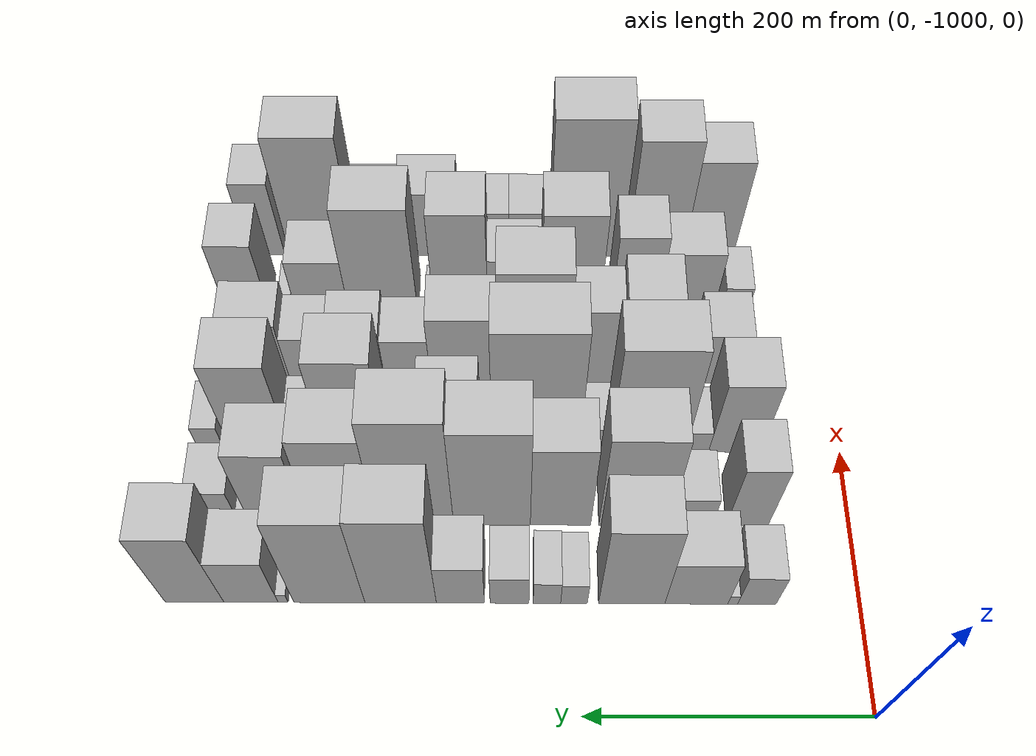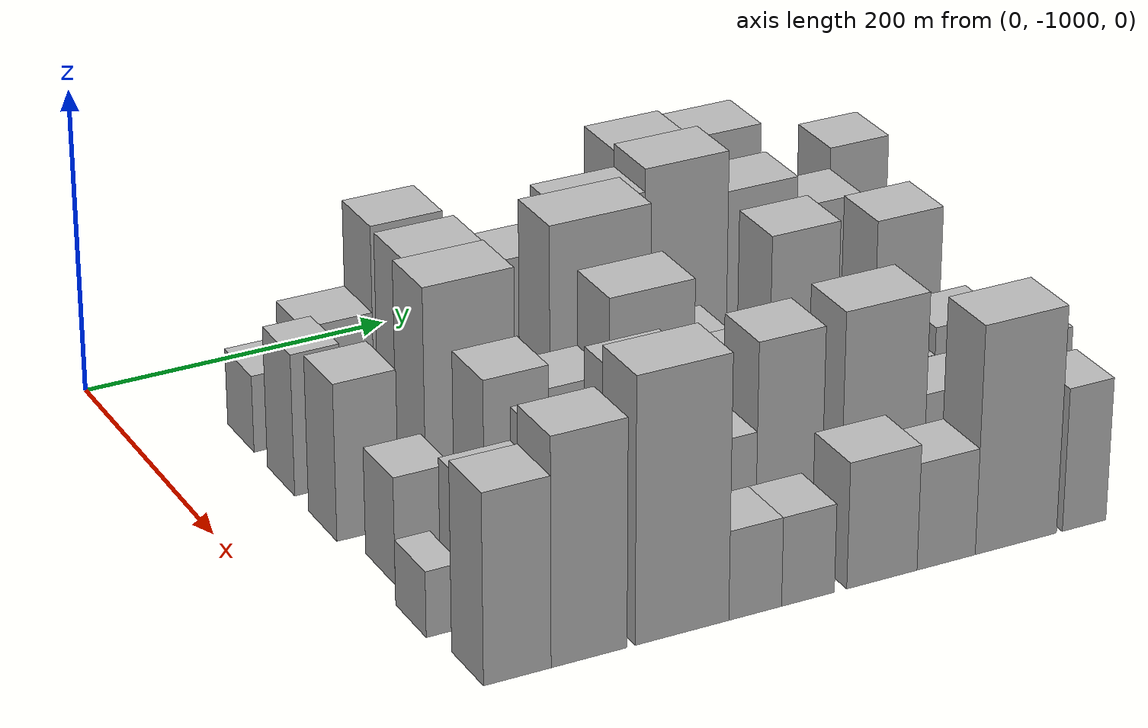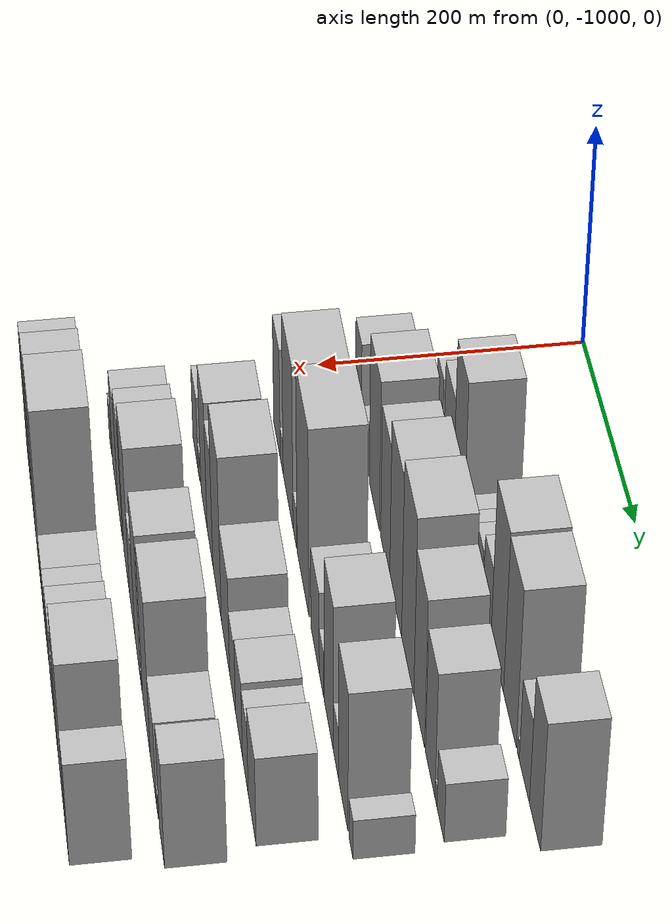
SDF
<sdf version="1.6">
 <world name="default">
  <model name="building_1">
   <static>1</static>
   <pose>100.0000 -926.3559 0 0.000000 0.000000 0.000000</pose>
   <link name="link">
    <pose>0 0 25.50 0 0 0</pose>
    <collision name="collision"><geometry><box><size>40.0000 27.2883 51.0000</size></box></geometry></collision>
    <visual name="visual">
     <cast_shadows>0</cast_shadows>
     <geometry><box><size>40.0000 27.2883 51.0000</size></box></geometry>
     <material>
      <script>
       <uri>model://HANNAS_wall/materials/scripts</uri>
       <uri>model://HANNAS_wall/materials/textures</uri>
       <name>vrc/HANNAS_wall</name>
      </script>
     </material>
    </visual>
   </link>
  </model>
  <model name="building_2">
   <static>1</static>
   <pose>100.0000 -909.2402 0 0.000000 0.000000 0.000000</pose>
   <link name="link">
    <pose>0 0 7.50 0 0 0</pose>
    <collision name="collision"><geometry><box><size>40.0000 6.9430 15.0000</size></box></geometry></collision>
    <visual name="visual">
     <cast_shadows>0</cast_shadows>
     <geometry><box><size>40.0000 6.9430 15.0000</size></box></geometry>
     <material>
      <script>
       <uri>model://HANNAS_wall/materials/scripts</uri>
       <uri>model://HANNAS_wall/materials/textures</uri>
       <name>vrc/HANNAS_wall</name>
      </script>
     </material>
    </visual>
   </link>
  </model>
  <model name="building_3">
   <static>1</static>
   <pose>100.0000 -883.3214 0 0.000000 0.000000 0.000000</pose>
   <link name="link">
    <pose>0 0 37.50 0 0 0</pose>
    <collision name="collision"><geometry><box><size>40.0000 44.8946 75.0000</size></box></geometry></collision>
    <visual name="visual">
     <cast_shadows>0</cast_shadows>
     <geometry><box><size>40.0000 44.8946 75.0000</size></box></geometry>
     <material>
      <script>
       <uri>model://HANNAS_wall/materials/scripts</uri>
       <uri>model://HANNAS_wall/materials/textures</uri>
       <name>vrc/HANNAS_wall</name>
      </script>
     </material>
    </visual>
   </link>
  </model>
  <model name="building_4">
   <static>1</static>
   <pose>100.0000 -837.3300 0 0.000000 0.000000 0.000000</pose>
   <link name="link">
    <pose>0 0 66.00 0 0 0</pose>
    <collision name="collision"><geometry><box><size>40.0000 47.0882 132.0000</size></box></geometry></collision>
    <visual name="visual">
     <cast_shadows>0</cast_shadows>
     <geometry><box><size>40.0000 47.0882 132.0000</size></box></geometry>
     <material>
      <script>
       <uri>model://HANNAS_wall/materials/scripts</uri>
       <uri>model://HANNAS_wall/materials/textures</uri>
       <name>vrc/HANNAS_wall</name>
      </script>
     </material>
    </visual>
   </link>
  </model>
  <model name="building_5">
   <static>1</static>
   <pose>100.0000 -796.3062 0 0.000000 0.000000 0.000000</pose>
   <link name="link">
    <pose>0 0 18.00 0 0 0</pose>
    <collision name="collision"><geometry><box><size>40.0000 18.9595 36.0000</size></box></geometry></collision>
    <visual name="visual">
     <cast_shadows>0</cast_shadows>
     <geometry><box><size>40.0000 18.9595 36.0000</size></box></geometry>
     <material>
      <script>
       <uri>model://HANNAS_wall/materials/scripts</uri>
       <uri>model://HANNAS_wall/materials/textures</uri>
       <name>vrc/HANNAS_wall</name>
      </script>
     </material>
    </visual>
   </link>
  </model>
  <model name="building_6">
   <static>1</static>
   <pose>100.0000 -777.0659 0 0.000000 0.000000 0.000000</pose>
   <link name="link">
    <pose>0 0 19.50 0 0 0</pose>
    <collision name="collision"><geometry><box><size>40.0000 19.5210 39.0000</size></box></geometry></collision>
    <visual name="visual">
     <cast_shadows>0</cast_shadows>
     <geometry><box><size>40.0000 19.5210 39.0000</size></box></geometry>
     <material>
      <script>
       <uri>model://HANNAS_wall/materials/scripts</uri>
       <uri>model://HANNAS_wall/materials/textures</uri>
       <name>vrc/HANNAS_wall</name>
      </script>
     </material>
    </visual>
   </link>
  </model>
  <model name="building_7">
   <static>1</static>
   <pose>100.0000 -750.5060 0 0.000000 0.000000 0.000000</pose>
   <link name="link">
    <pose>0 0 24.00 0 0 0</pose>
    <collision name="collision"><geometry><box><size>40.0000 27.5988 48.0000</size></box></geometry></collision>
    <visual name="visual">
     <cast_shadows>0</cast_shadows>
     <geometry><box><size>40.0000 27.5988 48.0000</size></box></geometry>
     <material>
      <script>
       <uri>model://HANNAS_wall/materials/scripts</uri>
       <uri>model://HANNAS_wall/materials/textures</uri>
       <name>vrc/HANNAS_wall</name>
      </script>
     </material>
    </visual>
   </link>
  </model>
  <model name="building_8">
   <static>1</static>
   <pose>100.0000 -715.6049 0 0.000000 0.000000 0.000000</pose>
   <link name="link">
    <pose>0 0 33.00 0 0 0</pose>
    <collision name="collision"><geometry><box><size>40.0000 34.2035 66.0000</size></box></geometry></collision>
    <visual name="visual">
     <cast_shadows>0</cast_shadows>
     <geometry><box><size>40.0000 34.2035 66.0000</size></box></geometry>
     <material>
      <script>
       <uri>model://HANNAS_wall/materials/scripts</uri>
       <uri>model://HANNAS_wall/materials/textures</uri>
       <name>vrc/HANNAS_wall</name>
      </script>
     </material>
    </visual>
   </link>
  </model>
  <model name="building_9">
   <static>1</static>
   <pose>100.0000 -673.0866 0 0.000000 0.000000 0.000000</pose>
   <link name="link">
    <pose>0 0 73.50 0 0 0</pose>
    <collision name="collision"><geometry><box><size>40.0000 50.8330 147.0000</size></box></geometry></collision>
    <visual name="visual">
     <cast_shadows>0</cast_shadows>
     <geometry><box><size>40.0000 50.8330 147.0000</size></box></geometry>
     <material>
      <script>
       <uri>model://HANNAS_wall/materials/scripts</uri>
       <uri>model://HANNAS_wall/materials/textures</uri>
       <name>vrc/HANNAS_wall</name>
      </script>
     </material>
    </visual>
   </link>
  </model>
  <model name="building_10">
   <static>1</static>
   <pose>100.0000 -622.3766 0 0.000000 0.000000 0.000000</pose>
   <link name="link">
    <pose>0 0 72.00 0 0 0</pose>
    <collision name="collision"><geometry><box><size>40.0000 50.5870 144.0000</size></box></geometry></collision>
    <visual name="visual">
     <cast_shadows>0</cast_shadows>
     <geometry><box><size>40.0000 50.5870 144.0000</size></box></geometry>
     <material>
      <script>
       <uri>model://HANNAS_wall/materials/scripts</uri>
       <uri>model://HANNAS_wall/materials/textures</uri>
       <name>vrc/HANNAS_wall</name>
      </script>
     </material>
    </visual>
   </link>
  </model>
  <model name="building_11">
   <static>1</static>
   <pose>100.0000 -589.4792 0 0.000000 0.000000 0.000000</pose>
   <link name="link">
    <pose>0 0 7.50 0 0 0</pose>
    <collision name="collision"><geometry><box><size>40.0000 7.2077 15.0000</size></box></geometry></collision>
    <visual name="visual">
     <cast_shadows>0</cast_shadows>
     <geometry><box><size>40.0000 7.2077 15.0000</size></box></geometry>
     <material>
      <script>
       <uri>model://HANNAS_wall/materials/scripts</uri>
       <uri>model://HANNAS_wall/materials/textures</uri>
       <name>vrc/HANNAS_wall</name>
      </script>
     </material>
    </visual>
   </link>
  </model>
  <model name="building_12">
   <static>1</static>
   <pose>100.0000 -566.5896 0 0.000000 0.000000 0.000000</pose>
   <link name="link">
    <pose>0 0 37.50 0 0 0</pose>
    <collision name="collision"><geometry><box><size>40.0000 38.5714 75.0000</size></box></geometry></collision>
    <visual name="visual">
     <cast_shadows>0</cast_shadows>
     <geometry><box><size>40.0000 38.5714 75.0000</size></box></geometry>
     <material>
      <script>
       <uri>model://HANNAS_wall/materials/scripts</uri>
       <uri>model://HANNAS_wall/materials/textures</uri>
       <name>vrc/HANNAS_wall</name>
      </script>
     </material>
    </visual>
   </link>
  </model>
  <model name="building_13">
   <static>1</static>
   <pose>100.0000 -526.4123 0 0.000000 0.000000 0.000000</pose>
   <link name="link">
    <pose>0 0 58.50 0 0 0</pose>
    <collision name="collision"><geometry><box><size>40.0000 41.7831 117.0000</size></box></geometry></collision>
    <visual name="visual">
     <cast_shadows>0</cast_shadows>
     <geometry><box><size>40.0000 41.7831 117.0000</size></box></geometry>
     <material>
      <script>
       <uri>model://HANNAS_wall/materials/scripts</uri>
       <uri>model://HANNAS_wall/materials/textures</uri>
       <name>vrc/HANNAS_wall</name>
      </script>
     </material>
    </visual>
   </link>
  </model>
  <model name="building_55">
   <static>1</static>
   <pose>160.0000 -924.5973 0 0.000000 0.000000 0.000000</pose>
   <link name="link">
    <pose>0 0 46.50 0 0 0</pose>
    <collision name="collision"><geometry><box><size>40.0000 30.8054 93.0000</size></box></geometry></collision>
    <visual name="visual">
     <cast_shadows>0</cast_shadows>
     <geometry><box><size>40.0000 30.8054 93.0000</size></box></geometry>
     <material>
      <script>
       <uri>model://HANNAS_wall/materials/scripts</uri>
       <uri>model://HANNAS_wall/materials/textures</uri>
       <name>vrc/HANNAS_wall</name>
      </script>
     </material>
    </visual>
   </link>
  </model>
  <model name="building_56">
   <static>1</static>
   <pose>160.0000 -886.3849 0 0.000000 0.000000 0.000000</pose>
   <link name="link">
    <pose>0 0 22.50 0 0 0</pose>
    <collision name="collision"><geometry><box><size>40.0000 25.6195 45.0000</size></box></geometry></collision>
    <visual name="visual">
     <cast_shadows>0</cast_shadows>
     <geometry><box><size>40.0000 25.6195 45.0000</size></box></geometry>
     <material>
      <script>
       <uri>model://HANNAS_wall/materials/scripts</uri>
       <uri>model://HANNAS_wall/materials/textures</uri>
       <name>vrc/HANNAS_wall</name>
      </script>
     </material>
    </visual>
   </link>
  </model>
  <model name="building_57">
   <static>1</static>
   <pose>160.0000 -841.6415 0 0.000000 0.000000 0.000000</pose>
   <link name="link">
    <pose>0 0 69.00 0 0 0</pose>
    <collision name="collision"><geometry><box><size>40.0000 51.8672 138.0000</size></box></geometry></collision>
    <visual name="visual">
     <cast_shadows>0</cast_shadows>
     <geometry><box><size>40.0000 51.8672 138.0000</size></box></geometry>
     <material>
      <script>
       <uri>model://HANNAS_wall/materials/scripts</uri>
       <uri>model://HANNAS_wall/materials/textures</uri>
       <name>vrc/HANNAS_wall</name>
      </script>
     </material>
    </visual>
   </link>
  </model>
  <model name="building_58">
   <static>1</static>
   <pose>160.0000 -787.5661 0 0.000000 0.000000 0.000000</pose>
   <link name="link">
    <pose>0 0 61.50 0 0 0</pose>
    <collision name="collision"><geometry><box><size>40.0000 44.2837 123.0000</size></box></geometry></collision>
    <visual name="visual">
     <cast_shadows>0</cast_shadows>
     <geometry><box><size>40.0000 44.2837 123.0000</size></box></geometry>
     <material>
      <script>
       <uri>model://HANNAS_wall/materials/scripts</uri>
       <uri>model://HANNAS_wall/materials/textures</uri>
       <name>vrc/HANNAS_wall</name>
      </script>
     </material>
    </visual>
   </link>
  </model>
  <model name="building_59">
   <static>1</static>
   <pose>160.0000 -737.2910 0 0.000000 0.000000 0.000000</pose>
   <link name="link">
    <pose>0 0 73.50 0 0 0</pose>
    <collision name="collision"><geometry><box><size>40.0000 56.2665 147.0000</size></box></geometry></collision>
    <visual name="visual">
     <cast_shadows>0</cast_shadows>
     <geometry><box><size>40.0000 56.2665 147.0000</size></box></geometry>
     <material>
      <script>
       <uri>model://HANNAS_wall/materials/scripts</uri>
       <uri>model://HANNAS_wall/materials/textures</uri>
       <name>vrc/HANNAS_wall</name>
      </script>
     </material>
    </visual>
   </link>
  </model>
  <model name="building_60">
   <static>1</static>
   <pose>160.0000 -680.9526 0 0.000000 0.000000 0.000000</pose>
   <link name="link">
    <pose>0 0 81.00 0 0 0</pose>
    <collision name="collision"><geometry><box><size>40.0000 56.4103 162.0000</size></box></geometry></collision>
    <visual name="visual">
     <cast_shadows>0</cast_shadows>
     <geometry><box><size>40.0000 56.4103 162.0000</size></box></geometry>
     <material>
      <script>
       <uri>model://HANNAS_wall/materials/scripts</uri>
       <uri>model://HANNAS_wall/materials/textures</uri>
       <name>vrc/HANNAS_wall</name>
      </script>
     </material>
    </visual>
   </link>
  </model>
  <model name="building_61">
   <static>1</static>
   <pose>160.0000 -628.8913 0 0.000000 0.000000 0.000000</pose>
   <link name="link">
    <pose>0 0 67.50 0 0 0</pose>
    <collision name="collision"><geometry><box><size>40.0000 47.7122 135.0000</size></box></geometry></collision>
    <visual name="visual">
     <cast_shadows>0</cast_shadows>
     <geometry><box><size>40.0000 47.7122 135.0000</size></box></geometry>
     <material>
      <script>
       <uri>model://HANNAS_wall/materials/scripts</uri>
       <uri>model://HANNAS_wall/materials/textures</uri>
       <name>vrc/HANNAS_wall</name>
      </script>
     </material>
    </visual>
   </link>
  </model>
  <model name="building_62">
   <static>1</static>
   <pose>160.0000 -580.3543 0 0.000000 0.000000 0.000000</pose>
   <link name="link">
    <pose>0 0 57.00 0 0 0</pose>
    <collision name="collision"><geometry><box><size>40.0000 41.3618 114.0000</size></box></geometry></collision>
    <visual name="visual">
     <cast_shadows>0</cast_shadows>
     <geometry><box><size>40.0000 41.3618 114.0000</size></box></geometry>
     <material>
      <script>
       <uri>model://HANNAS_wall/materials/scripts</uri>
       <uri>model://HANNAS_wall/materials/textures</uri>
       <name>vrc/HANNAS_wall</name>
      </script>
     </material>
    </visual>
   </link>
  </model>
  <model name="building_63">
   <static>1</static>
   <pose>160.0000 -555.6075 0 0.000000 0.000000 0.000000</pose>
   <link name="link">
    <pose>0 0 9.00 0 0 0</pose>
    <collision name="collision"><geometry><box><size>40.0000 8.1319 18.0000</size></box></geometry></collision>
    <visual name="visual">
     <cast_shadows>0</cast_shadows>
     <geometry><box><size>40.0000 8.1319 18.0000</size></box></geometry>
     <material>
      <script>
       <uri>model://HANNAS_wall/materials/scripts</uri>
       <uri>model://HANNAS_wall/materials/textures</uri>
       <name>vrc/HANNAS_wall</name>
      </script>
     </material>
    </visual>
   </link>
  </model>
  <model name="building_64">
   <static>1</static>
   <pose>160.0000 -536.3384 0 0.000000 0.000000 0.000000</pose>
   <link name="link">
    <pose>0 0 27.00 0 0 0</pose>
    <collision name="collision"><geometry><box><size>40.0000 30.4063 54.0000</size></box></geometry></collision>
    <visual name="visual">
     <cast_shadows>0</cast_shadows>
     <geometry><box><size>40.0000 30.4063 54.0000</size></box></geometry>
     <material>
      <script>
       <uri>model://HANNAS_wall/materials/scripts</uri>
       <uri>model://HANNAS_wall/materials/textures</uri>
       <name>vrc/HANNAS_wall</name>
      </script>
     </material>
    </visual>
   </link>
  </model>
  <model name="building_110">
   <static>1</static>
   <pose>220.0000 -920.3499 0 0.000000 0.000000 0.000000</pose>
   <link name="link">
    <pose>0 0 51.00 0 0 0</pose>
    <collision name="collision"><geometry><box><size>40.0000 39.3003 102.0000</size></box></geometry></collision>
    <visual name="visual">
     <cast_shadows>0</cast_shadows>
     <geometry><box><size>40.0000 39.3003 102.0000</size></box></geometry>
     <material>
      <script>
       <uri>model://HANNAS_wall/materials/scripts</uri>
       <uri>model://HANNAS_wall/materials/textures</uri>
       <name>vrc/HANNAS_wall</name>
      </script>
     </material>
    </visual>
   </link>
  </model>
  <model name="building_111">
   <static>1</static>
   <pose>220.0000 -891.9730 0 0.000000 0.000000 0.000000</pose>
   <link name="link">
    <pose>0 0 15.00 0 0 0</pose>
    <collision name="collision"><geometry><box><size>40.0000 17.4535 30.0000</size></box></geometry></collision>
    <visual name="visual">
     <cast_shadows>0</cast_shadows>
     <geometry><box><size>40.0000 17.4535 30.0000</size></box></geometry>
     <material>
      <script>
       <uri>model://HANNAS_wall/materials/scripts</uri>
       <uri>model://HANNAS_wall/materials/textures</uri>
       <name>vrc/HANNAS_wall</name>
      </script>
     </material>
    </visual>
   </link>
  </model>
  <model name="building_112">
   <static>1</static>
   <pose>220.0000 -854.3623 0 0.000000 0.000000 0.000000</pose>
   <link name="link">
    <pose>0 0 75.00 0 0 0</pose>
    <collision name="collision"><geometry><box><size>40.0000 57.7679 150.0000</size></box></geometry></collision>
    <visual name="visual">
     <cast_shadows>0</cast_shadows>
     <geometry><box><size>40.0000 57.7679 150.0000</size></box></geometry>
     <material>
      <script>
       <uri>model://HANNAS_wall/materials/scripts</uri>
       <uri>model://HANNAS_wall/materials/textures</uri>
       <name>vrc/HANNAS_wall</name>
      </script>
     </material>
    </visual>
   </link>
  </model>
  <model name="building_113">
   <static>1</static>
   <pose>220.0000 -815.6250 0 0.000000 0.000000 0.000000</pose>
   <link name="link">
    <pose>0 0 18.00 0 0 0</pose>
    <collision name="collision"><geometry><box><size>40.0000 19.7066 36.0000</size></box></geometry></collision>
    <visual name="visual">
     <cast_shadows>0</cast_shadows>
     <geometry><box><size>40.0000 19.7066 36.0000</size></box></geometry>
     <material>
      <script>
       <uri>model://HANNAS_wall/materials/scripts</uri>
       <uri>model://HANNAS_wall/materials/textures</uri>
       <name>vrc/HANNAS_wall</name>
      </script>
     </material>
    </visual>
   </link>
  </model>
  <model name="building_114">
   <static>1</static>
   <pose>220.0000 -769.8636 0 0.000000 0.000000 0.000000</pose>
   <link name="link">
    <pose>0 0 85.50 0 0 0</pose>
    <collision name="collision"><geometry><box><size>40.0000 65.8161 171.0000</size></box></geometry></collision>
    <visual name="visual">
     <cast_shadows>0</cast_shadows>
     <geometry><box><size>40.0000 65.8161 171.0000</size></box></geometry>
     <material>
      <script>
       <uri>model://HANNAS_wall/materials/scripts</uri>
       <uri>model://HANNAS_wall/materials/textures</uri>
       <name>vrc/HANNAS_wall</name>
      </script>
     </material>
    </visual>
   </link>
  </model>
  <model name="building_115">
   <static>1</static>
   <pose>220.0000 -704.5168 0 0.000000 0.000000 0.000000</pose>
   <link name="link">
    <pose>0 0 37.50 0 0 0</pose>
    <collision name="collision"><geometry><box><size>40.0000 44.8776 75.0000</size></box></geometry></collision>
    <visual name="visual">
     <cast_shadows>0</cast_shadows>
     <geometry><box><size>40.0000 44.8776 75.0000</size></box></geometry>
     <material>
      <script>
       <uri>model://HANNAS_wall/materials/scripts</uri>
       <uri>model://HANNAS_wall/materials/textures</uri>
       <name>vrc/HANNAS_wall</name>
      </script>
     </material>
    </visual>
   </link>
  </model>
  <model name="building_116">
   <static>1</static>
   <pose>220.0000 -670.6512 0 0.000000 0.000000 0.000000</pose>
   <link name="link">
    <pose>0 0 21.00 0 0 0</pose>
    <collision name="collision"><geometry><box><size>40.0000 22.8536 42.0000</size></box></geometry></collision>
    <visual name="visual">
     <cast_shadows>0</cast_shadows>
     <geometry><box><size>40.0000 22.8536 42.0000</size></box></geometry>
     <material>
      <script>
       <uri>model://HANNAS_wall/materials/scripts</uri>
       <uri>model://HANNAS_wall/materials/textures</uri>
       <name>vrc/HANNAS_wall</name>
      </script>
     </material>
    </visual>
   </link>
  </model>
  <model name="building_117">
   <static>1</static>
   <pose>220.0000 -633.0386 0 0.000000 0.000000 0.000000</pose>
   <link name="link">
    <pose>0 0 66.00 0 0 0</pose>
    <collision name="collision"><geometry><box><size>40.0000 46.3716 132.0000</size></box></geometry></collision>
    <visual name="visual">
     <cast_shadows>0</cast_shadows>
     <geometry><box><size>40.0000 46.3716 132.0000</size></box></geometry>
     <material>
      <script>
       <uri>model://HANNAS_wall/materials/scripts</uri>
       <uri>model://HANNAS_wall/materials/textures</uri>
       <name>vrc/HANNAS_wall</name>
      </script>
     </material>
    </visual>
   </link>
  </model>
  <model name="building_118">
   <static>1</static>
   <pose>220.0000 -597.0042 0 0.000000 0.000000 0.000000</pose>
   <link name="link">
    <pose>0 0 22.50 0 0 0</pose>
    <collision name="collision"><geometry><box><size>40.0000 25.6973 45.0000</size></box></geometry></collision>
    <visual name="visual">
     <cast_shadows>0</cast_shadows>
     <geometry><box><size>40.0000 25.6973 45.0000</size></box></geometry>
     <material>
      <script>
       <uri>model://HANNAS_wall/materials/scripts</uri>
       <uri>model://HANNAS_wall/materials/textures</uri>
       <name>vrc/HANNAS_wall</name>
      </script>
     </material>
    </visual>
   </link>
  </model>
  <model name="building_119">
   <static>1</static>
   <pose>220.0000 -561.4699 0 0.000000 0.000000 0.000000</pose>
   <link name="link">
    <pose>0 0 63.00 0 0 0</pose>
    <collision name="collision"><geometry><box><size>40.0000 45.3712 126.0000</size></box></geometry></collision>
    <visual name="visual">
     <cast_shadows>0</cast_shadows>
     <geometry><box><size>40.0000 45.3712 126.0000</size></box></geometry>
     <material>
      <script>
       <uri>model://HANNAS_wall/materials/scripts</uri>
       <uri>model://HANNAS_wall/materials/textures</uri>
       <name>vrc/HANNAS_wall</name>
      </script>
     </material>
    </visual>
   </link>
  </model>
  <model name="building_120">
   <static>1</static>
   <pose>220.0000 -524.0686 0 0.000000 0.000000 0.000000</pose>
   <link name="link">
    <pose>0 0 18.00 0 0 0</pose>
    <collision name="collision"><geometry><box><size>40.0000 19.4313 36.0000</size></box></geometry></collision>
    <visual name="visual">
     <cast_shadows>0</cast_shadows>
     <geometry><box><size>40.0000 19.4313 36.0000</size></box></geometry>
     <material>
      <script>
       <uri>model://HANNAS_wall/materials/scripts</uri>
       <uri>model://HANNAS_wall/materials/textures</uri>
       <name>vrc/HANNAS_wall</name>
      </script>
     </material>
    </visual>
   </link>
  </model>
  <model name="building_167">
   <static>1</static>
   <pose>280.0000 -913.1073 0 0.000000 0.000000 0.000000</pose>
   <link name="link">
    <pose>0 0 34.50 0 0 0</pose>
    <collision name="collision"><geometry><box><size>40.0000 35.7853 69.0000</size></box></geometry></collision>
    <visual name="visual">
     <cast_shadows>0</cast_shadows>
     <geometry><box><size>40.0000 35.7853 69.0000</size></box></geometry>
     <material>
      <script>
       <uri>model://HANNAS_wall/materials/scripts</uri>
       <uri>model://HANNAS_wall/materials/textures</uri>
       <name>vrc/HANNAS_wall</name>
      </script>
     </material>
    </visual>
   </link>
  </model>
  <model name="building_168">
   <static>1</static>
   <pose>280.0000 -889.4634 0 0.000000 0.000000 0.000000</pose>
   <link name="link">
    <pose>0 0 13.50 0 0 0</pose>
    <collision name="collision"><geometry><box><size>40.0000 11.5025 27.0000</size></box></geometry></collision>
    <visual name="visual">
     <cast_shadows>0</cast_shadows>
     <geometry><box><size>40.0000 11.5025 27.0000</size></box></geometry>
     <material>
      <script>
       <uri>model://HANNAS_wall/materials/scripts</uri>
       <uri>model://HANNAS_wall/materials/textures</uri>
       <name>vrc/HANNAS_wall</name>
      </script>
     </material>
    </visual>
   </link>
  </model>
  <model name="building_169">
   <static>1</static>
   <pose>280.0000 -854.1947 0 0.000000 0.000000 0.000000</pose>
   <link name="link">
    <pose>0 0 58.50 0 0 0</pose>
    <collision name="collision"><geometry><box><size>40.0000 41.0349 117.0000</size></box></geometry></collision>
    <visual name="visual">
     <cast_shadows>0</cast_shadows>
     <geometry><box><size>40.0000 41.0349 117.0000</size></box></geometry>
     <material>
      <script>
       <uri>model://HANNAS_wall/materials/scripts</uri>
       <uri>model://HANNAS_wall/materials/textures</uri>
       <name>vrc/HANNAS_wall</name>
      </script>
     </material>
    </visual>
   </link>
  </model>
  <model name="building_170">
   <static>1</static>
   <pose>280.0000 -814.3763 0 0.000000 0.000000 0.000000</pose>
   <link name="link">
    <pose>0 0 51.00 0 0 0</pose>
    <collision name="collision"><geometry><box><size>40.0000 38.6019 102.0000</size></box></geometry></collision>
    <visual name="visual">
     <cast_shadows>0</cast_shadows>
     <geometry><box><size>40.0000 38.6019 102.0000</size></box></geometry>
     <material>
      <script>
       <uri>model://HANNAS_wall/materials/scripts</uri>
       <uri>model://HANNAS_wall/materials/textures</uri>
       <name>vrc/HANNAS_wall</name>
      </script>
     </material>
    </visual>
   </link>
  </model>
  <model name="building_171">
   <static>1</static>
   <pose>280.0000 -767.6852 0 0.000000 0.000000 0.000000</pose>
   <link name="link">
    <pose>0 0 75.00 0 0 0</pose>
    <collision name="collision"><geometry><box><size>40.0000 54.7802 150.0000</size></box></geometry></collision>
    <visual name="visual">
     <cast_shadows>0</cast_shadows>
     <geometry><box><size>40.0000 54.7802 150.0000</size></box></geometry>
     <material>
      <script>
       <uri>model://HANNAS_wall/materials/scripts</uri>
       <uri>model://HANNAS_wall/materials/textures</uri>
       <name>vrc/HANNAS_wall</name>
      </script>
     </material>
    </visual>
   </link>
  </model>
  <model name="building_172">
   <static>1</static>
   <pose>280.0000 -714.1706 0 0.000000 0.000000 0.000000</pose>
   <link name="link">
    <pose>0 0 45.00 0 0 0</pose>
    <collision name="collision"><geometry><box><size>40.0000 52.2491 90.0000</size></box></geometry></collision>
    <visual name="visual">
     <cast_shadows>0</cast_shadows>
     <geometry><box><size>40.0000 52.2491 90.0000</size></box></geometry>
     <material>
      <script>
       <uri>model://HANNAS_wall/materials/scripts</uri>
       <uri>model://HANNAS_wall/materials/textures</uri>
       <name>vrc/HANNAS_wall</name>
      </script>
     </material>
    </visual>
   </link>
  </model>
  <model name="building_173">
   <static>1</static>
   <pose>280.0000 -670.2677 0 0.000000 0.000000 0.000000</pose>
   <link name="link">
    <pose>0 0 30.00 0 0 0</pose>
    <collision name="collision"><geometry><box><size>40.0000 35.5567 60.0000</size></box></geometry></collision>
    <visual name="visual">
     <cast_shadows>0</cast_shadows>
     <geometry><box><size>40.0000 35.5567 60.0000</size></box></geometry>
     <material>
      <script>
       <uri>model://HANNAS_wall/materials/scripts</uri>
       <uri>model://HANNAS_wall/materials/textures</uri>
       <name>vrc/HANNAS_wall</name>
      </script>
     </material>
    </visual>
   </link>
  </model>
  <model name="building_174">
   <static>1</static>
   <pose>280.0000 -632.2430 0 0.000000 0.000000 0.000000</pose>
   <link name="link">
    <pose>0 0 34.50 0 0 0</pose>
    <collision name="collision"><geometry><box><size>40.0000 40.4929 69.0000</size></box></geometry></collision>
    <visual name="visual">
     <cast_shadows>0</cast_shadows>
     <geometry><box><size>40.0000 40.4929 69.0000</size></box></geometry>
     <material>
      <script>
       <uri>model://HANNAS_wall/materials/scripts</uri>
       <uri>model://HANNAS_wall/materials/textures</uri>
       <name>vrc/HANNAS_wall</name>
      </script>
     </material>
    </visual>
   </link>
  </model>
  <model name="building_175">
   <static>1</static>
   <pose>280.0000 -595.1485 0 0.000000 0.000000 0.000000</pose>
   <link name="link">
    <pose>0 0 31.50 0 0 0</pose>
    <collision name="collision"><geometry><box><size>40.0000 33.6961 63.0000</size></box></geometry></collision>
    <visual name="visual">
     <cast_shadows>0</cast_shadows>
     <geometry><box><size>40.0000 33.6961 63.0000</size></box></geometry>
     <material>
      <script>
       <uri>model://HANNAS_wall/materials/scripts</uri>
       <uri>model://HANNAS_wall/materials/textures</uri>
       <name>vrc/HANNAS_wall</name>
      </script>
     </material>
    </visual>
   </link>
  </model>
  <model name="building_176">
   <static>1</static>
   <pose>280.0000 -555.9558 0 0.000000 0.000000 0.000000</pose>
   <link name="link">
    <pose>0 0 40.50 0 0 0</pose>
    <collision name="collision"><geometry><box><size>40.0000 44.6893 81.0000</size></box></geometry></collision>
    <visual name="visual">
     <cast_shadows>0</cast_shadows>
     <geometry><box><size>40.0000 44.6893 81.0000</size></box></geometry>
     <material>
      <script>
       <uri>model://HANNAS_wall/materials/scripts</uri>
       <uri>model://HANNAS_wall/materials/textures</uri>
       <name>vrc/HANNAS_wall</name>
      </script>
     </material>
    </visual>
   </link>
  </model>
  <model name="building_217">
   <static>1</static>
   <pose>340.0000 -929.1100 0 0.000000 0.000000 0.000000</pose>
   <link name="link">
    <pose>0 0 21.00 0 0 0</pose>
    <collision name="collision"><geometry><box><size>40.0000 21.7800 42.0000</size></box></geometry></collision>
    <visual name="visual">
     <cast_shadows>0</cast_shadows>
     <geometry><box><size>40.0000 21.7800 42.0000</size></box></geometry>
     <material>
      <script>
       <uri>model://HANNAS_wall/materials/scripts</uri>
       <uri>model://HANNAS_wall/materials/textures</uri>
       <name>vrc/HANNAS_wall</name>
      </script>
     </material>
    </visual>
   </link>
  </model>
  <model name="building_218">
   <static>1</static>
   <pose>340.0000 -889.9579 0 0.000000 0.000000 0.000000</pose>
   <link name="link">
    <pose>0 0 43.50 0 0 0</pose>
    <collision name="collision"><geometry><box><size>40.0000 44.5242 87.0000</size></box></geometry></collision>
    <visual name="visual">
     <cast_shadows>0</cast_shadows>
     <geometry><box><size>40.0000 44.5242 87.0000</size></box></geometry>
     <material>
      <script>
       <uri>model://HANNAS_wall/materials/scripts</uri>
       <uri>model://HANNAS_wall/materials/textures</uri>
       <name>vrc/HANNAS_wall</name>
      </script>
     </material>
    </visual>
   </link>
  </model>
  <model name="building_219">
   <static>1</static>
   <pose>340.0000 -848.9749 0 0.000000 0.000000 0.000000</pose>
   <link name="link">
    <pose>0 0 54.00 0 0 0</pose>
    <collision name="collision"><geometry><box><size>40.0000 37.4417 108.0000</size></box></geometry></collision>
    <visual name="visual">
     <cast_shadows>0</cast_shadows>
     <geometry><box><size>40.0000 37.4417 108.0000</size></box></geometry>
     <material>
      <script>
       <uri>model://HANNAS_wall/materials/scripts</uri>
       <uri>model://HANNAS_wall/materials/textures</uri>
       <name>vrc/HANNAS_wall</name>
      </script>
     </material>
    </visual>
   </link>
  </model>
  <model name="building_220">
   <static>1</static>
   <pose>340.0000 -797.6520 0 0.000000 0.000000 0.000000</pose>
   <link name="link">
    <pose>0 0 67.50 0 0 0</pose>
    <collision name="collision"><geometry><box><size>40.0000 47.2042 135.0000</size></box></geometry></collision>
    <visual name="visual">
     <cast_shadows>0</cast_shadows>
     <geometry><box><size>40.0000 47.2042 135.0000</size></box></geometry>
     <material>
      <script>
       <uri>model://HANNAS_wall/materials/scripts</uri>
       <uri>model://HANNAS_wall/materials/textures</uri>
       <name>vrc/HANNAS_wall</name>
      </script>
     </material>
    </visual>
   </link>
  </model>
  <model name="building_221">
   <static>1</static>
   <pose>340.0000 -753.0068 0 0.000000 0.000000 0.000000</pose>
   <link name="link">
    <pose>0 0 39.00 0 0 0</pose>
    <collision name="collision"><geometry><box><size>40.0000 42.0861 78.0000</size></box></geometry></collision>
    <visual name="visual">
     <cast_shadows>0</cast_shadows>
     <geometry><box><size>40.0000 42.0861 78.0000</size></box></geometry>
     <material>
      <script>
       <uri>model://HANNAS_wall/materials/scripts</uri>
       <uri>model://HANNAS_wall/materials/textures</uri>
       <name>vrc/HANNAS_wall</name>
      </script>
     </material>
    </visual>
   </link>
  </model>
  <model name="building_222">
   <static>1</static>
   <pose>340.0000 -710.3986 0 0.000000 0.000000 0.000000</pose>
   <link name="link">
    <pose>0 0 67.50 0 0 0</pose>
    <collision name="collision"><geometry><box><size>40.0000 43.1303 135.0000</size></box></geometry></collision>
    <visual name="visual">
     <cast_shadows>0</cast_shadows>
     <geometry><box><size>40.0000 43.1303 135.0000</size></box></geometry>
     <material>
      <script>
       <uri>model://HANNAS_wall/materials/scripts</uri>
       <uri>model://HANNAS_wall/materials/textures</uri>
       <name>vrc/HANNAS_wall</name>
      </script>
     </material>
    </visual>
   </link>
  </model>
  <model name="building_223">
   <static>1</static>
   <pose>340.0000 -685.3732 0 0.000000 0.000000 0.000000</pose>
   <link name="link">
    <pose>0 0 7.50 0 0 0</pose>
    <collision name="collision"><geometry><box><size>40.0000 6.9204 15.0000</size></box></geometry></collision>
    <visual name="visual">
     <cast_shadows>0</cast_shadows>
     <geometry><box><size>40.0000 6.9204 15.0000</size></box></geometry>
     <material>
      <script>
       <uri>model://HANNAS_wall/materials/scripts</uri>
       <uri>model://HANNAS_wall/materials/textures</uri>
       <name>vrc/HANNAS_wall</name>
      </script>
     </material>
    </visual>
   </link>
  </model>
  <model name="building_224">
   <static>1</static>
   <pose>340.0000 -648.3101 0 0.000000 0.000000 0.000000</pose>
   <link name="link">
    <pose>0 0 70.50 0 0 0</pose>
    <collision name="collision"><geometry><box><size>40.0000 55.2059 141.0000</size></box></geometry></collision>
    <visual name="visual">
     <cast_shadows>0</cast_shadows>
     <geometry><box><size>40.0000 55.2059 141.0000</size></box></geometry>
     <material>
      <script>
       <uri>model://HANNAS_wall/materials/scripts</uri>
       <uri>model://HANNAS_wall/materials/textures</uri>
       <name>vrc/HANNAS_wall</name>
      </script>
     </material>
    </visual>
   </link>
  </model>
  <model name="building_225">
   <static>1</static>
   <pose>340.0000 -599.5390 0 0.000000 0.000000 0.000000</pose>
   <link name="link">
    <pose>0 0 37.50 0 0 0</pose>
    <collision name="collision"><geometry><box><size>40.0000 42.3363 75.0000</size></box></geometry></collision>
    <visual name="visual">
     <cast_shadows>0</cast_shadows>
     <geometry><box><size>40.0000 42.3363 75.0000</size></box></geometry>
     <material>
      <script>
       <uri>model://HANNAS_wall/materials/scripts</uri>
       <uri>model://HANNAS_wall/materials/textures</uri>
       <name>vrc/HANNAS_wall</name>
      </script>
     </material>
    </visual>
   </link>
  </model>
  <model name="building_226">
   <static>1</static>
   <pose>340.0000 -570.1942 0 0.000000 0.000000 0.000000</pose>
   <link name="link">
    <pose>0 0 10.50 0 0 0</pose>
    <collision name="collision"><geometry><box><size>40.0000 10.3533 21.0000</size></box></geometry></collision>
    <visual name="visual">
     <cast_shadows>0</cast_shadows>
     <geometry><box><size>40.0000 10.3533 21.0000</size></box></geometry>
     <material>
      <script>
       <uri>model://HANNAS_wall/materials/scripts</uri>
       <uri>model://HANNAS_wall/materials/textures</uri>
       <name>vrc/HANNAS_wall</name>
      </script>
     </material>
    </visual>
   </link>
  </model>
  <model name="building_227">
   <static>1</static>
   <pose>340.0000 -539.7524 0 0.000000 0.000000 0.000000</pose>
   <link name="link">
    <pose>0 0 48.00 0 0 0</pose>
    <collision name="collision"><geometry><box><size>40.0000 34.5303 96.0000</size></box></geometry></collision>
    <visual name="visual">
     <cast_shadows>0</cast_shadows>
     <geometry><box><size>40.0000 34.5303 96.0000</size></box></geometry>
     <material>
      <script>
       <uri>model://HANNAS_wall/materials/scripts</uri>
       <uri>model://HANNAS_wall/materials/textures</uri>
       <name>vrc/HANNAS_wall</name>
      </script>
     </material>
    </visual>
   </link>
  </model>
  <model name="building_270">
   <static>1</static>
   <pose>400.0000 -913.4238 0 0.000000 0.000000 0.000000</pose>
   <link name="link">
    <pose>0 0 60.00 0 0 0</pose>
    <collision name="collision"><geometry><box><size>40.0000 41.1525 120.0000</size></box></geometry></collision>
    <visual name="visual">
     <cast_shadows>0</cast_shadows>
     <geometry><box><size>40.0000 41.1525 120.0000</size></box></geometry>
     <material>
      <script>
       <uri>model://HANNAS_wall/materials/scripts</uri>
       <uri>model://HANNAS_wall/materials/textures</uri>
       <name>vrc/HANNAS_wall</name>
      </script>
     </material>
    </visual>
   </link>
  </model>
  <model name="building_271">
   <static>1</static>
   <pose>400.0000 -869.4416 0 0.000000 0.000000 0.000000</pose>
   <link name="link">
    <pose>0 0 72.00 0 0 0</pose>
    <collision name="collision"><geometry><box><size>40.0000 46.8118 144.0000</size></box></geometry></collision>
    <visual name="visual">
     <cast_shadows>0</cast_shadows>
     <geometry><box><size>40.0000 46.8118 144.0000</size></box></geometry>
     <material>
      <script>
       <uri>model://HANNAS_wall/materials/scripts</uri>
       <uri>model://HANNAS_wall/materials/textures</uri>
       <name>vrc/HANNAS_wall</name>
      </script>
     </material>
    </visual>
   </link>
  </model>
  <model name="building_272">
   <static>1</static>
   <pose>400.0000 -811.5729 0 0.000000 0.000000 0.000000</pose>
   <link name="link">
    <pose>0 0 84.00 0 0 0</pose>
    <collision name="collision"><geometry><box><size>40.0000 58.9257 168.0000</size></box></geometry></collision>
    <visual name="visual">
     <cast_shadows>0</cast_shadows>
     <geometry><box><size>40.0000 58.9257 168.0000</size></box></geometry>
     <material>
      <script>
       <uri>model://HANNAS_wall/materials/scripts</uri>
       <uri>model://HANNAS_wall/materials/textures</uri>
       <name>vrc/HANNAS_wall</name>
      </script>
     </material>
    </visual>
   </link>
  </model>
  <model name="building_273">
   <static>1</static>
   <pose>400.0000 -765.2626 0 0.000000 0.000000 0.000000</pose>
   <link name="link">
    <pose>0 0 28.50 0 0 0</pose>
    <collision name="collision"><geometry><box><size>40.0000 33.6948 57.0000</size></box></geometry></collision>
    <visual name="visual">
     <cast_shadows>0</cast_shadows>
     <geometry><box><size>40.0000 33.6948 57.0000</size></box></geometry>
     <material>
      <script>
       <uri>model://HANNAS_wall/materials/scripts</uri>
       <uri>model://HANNAS_wall/materials/textures</uri>
       <name>vrc/HANNAS_wall</name>
      </script>
     </material>
    </visual>
   </link>
  </model>
  <model name="building_274">
   <static>1</static>
   <pose>400.0000 -731.3544 0 0.000000 0.000000 0.000000</pose>
   <link name="link">
    <pose>0 0 28.50 0 0 0</pose>
    <collision name="collision"><geometry><box><size>40.0000 34.1217 57.0000</size></box></geometry></collision>
    <visual name="visual">
     <cast_shadows>0</cast_shadows>
     <geometry><box><size>40.0000 34.1217 57.0000</size></box></geometry>
     <material>
      <script>
       <uri>model://HANNAS_wall/materials/scripts</uri>
       <uri>model://HANNAS_wall/materials/textures</uri>
       <name>vrc/HANNAS_wall</name>
      </script>
     </material>
    </visual>
   </link>
  </model>
  <model name="building_275">
   <static>1</static>
   <pose>400.0000 -683.2492 0 0.000000 0.000000 0.000000</pose>
   <link name="link">
    <pose>0 0 40.50 0 0 0</pose>
    <collision name="collision"><geometry><box><size>40.0000 46.0885 81.0000</size></box></geometry></collision>
    <visual name="visual">
     <cast_shadows>0</cast_shadows>
     <geometry><box><size>40.0000 46.0885 81.0000</size></box></geometry>
     <material>
      <script>
       <uri>model://HANNAS_wall/materials/scripts</uri>
       <uri>model://HANNAS_wall/materials/textures</uri>
       <name>vrc/HANNAS_wall</name>
      </script>
     </material>
    </visual>
   </link>
  </model>
  <model name="building_276">
   <static>1</static>
   <pose>400.0000 -640.8296 0 0.000000 0.000000 0.000000</pose>
   <link name="link">
    <pose>0 0 34.50 0 0 0</pose>
    <collision name="collision"><geometry><box><size>40.0000 38.7507 69.0000</size></box></geometry></collision>
    <visual name="visual">
     <cast_shadows>0</cast_shadows>
     <geometry><box><size>40.0000 38.7507 69.0000</size></box></geometry>
     <material>
      <script>
       <uri>model://HANNAS_wall/materials/scripts</uri>
       <uri>model://HANNAS_wall/materials/textures</uri>
       <name>vrc/HANNAS_wall</name>
      </script>
     </material>
    </visual>
   </link>
  </model>
  <model name="building_277">
   <static>1</static>
   <pose>400.0000 -594.0528 0 0.000000 0.000000 0.000000</pose>
   <link name="link">
    <pose>0 0 73.50 0 0 0</pose>
    <collision name="collision"><geometry><box><size>40.0000 54.8028 147.0000</size></box></geometry></collision>
    <visual name="visual">
     <cast_shadows>0</cast_shadows>
     <geometry><box><size>40.0000 54.8028 147.0000</size></box></geometry>
     <material>
      <script>
       <uri>model://HANNAS_wall/materials/scripts</uri>
       <uri>model://HANNAS_wall/materials/textures</uri>
       <name>vrc/HANNAS_wall</name>
      </script>
     </material>
    </visual>
   </link>
  </model>
  <model name="building_278">
   <static>1</static>
   <pose>400.0000 -547.7834 0 0.000000 0.000000 0.000000</pose>
   <link name="link">
    <pose>0 0 46.50 0 0 0</pose>
    <collision name="collision"><geometry><box><size>40.0000 29.7361 93.0000</size></box></geometry></collision>
    <visual name="visual">
     <cast_shadows>0</cast_shadows>
     <geometry><box><size>40.0000 29.7361 93.0000</size></box></geometry>
     <material>
      <script>
       <uri>model://HANNAS_wall/materials/scripts</uri>
       <uri>model://HANNAS_wall/materials/textures</uri>
       <name>vrc/HANNAS_wall</name>
      </script>
     </material>
    </visual>
   </link>
  </model>
 </world>
</sdf>
